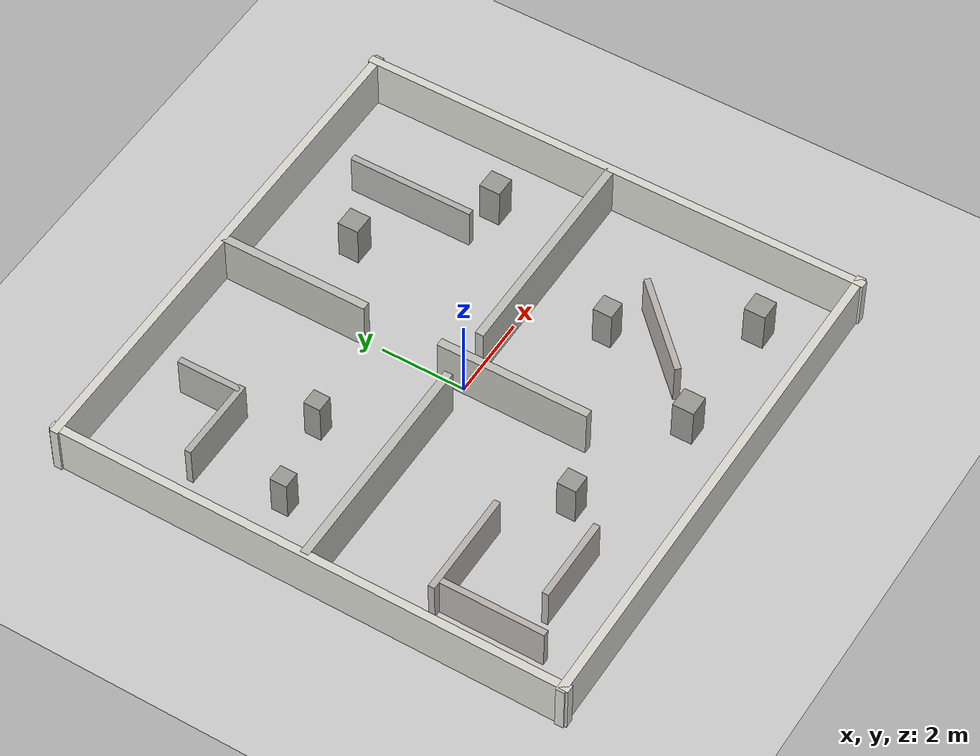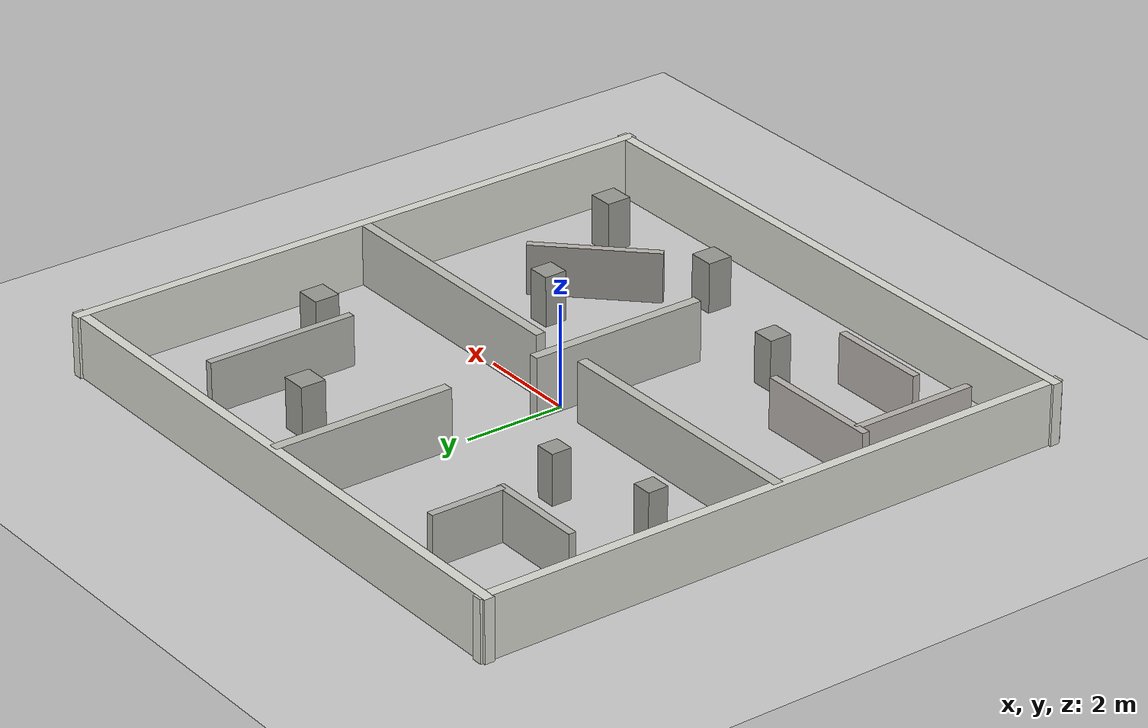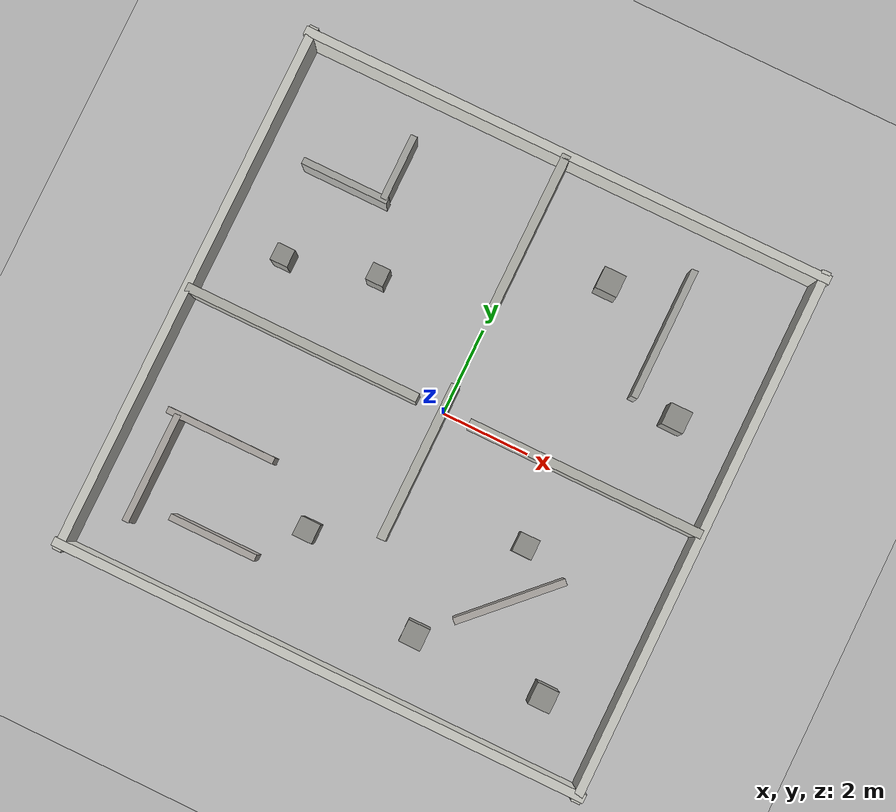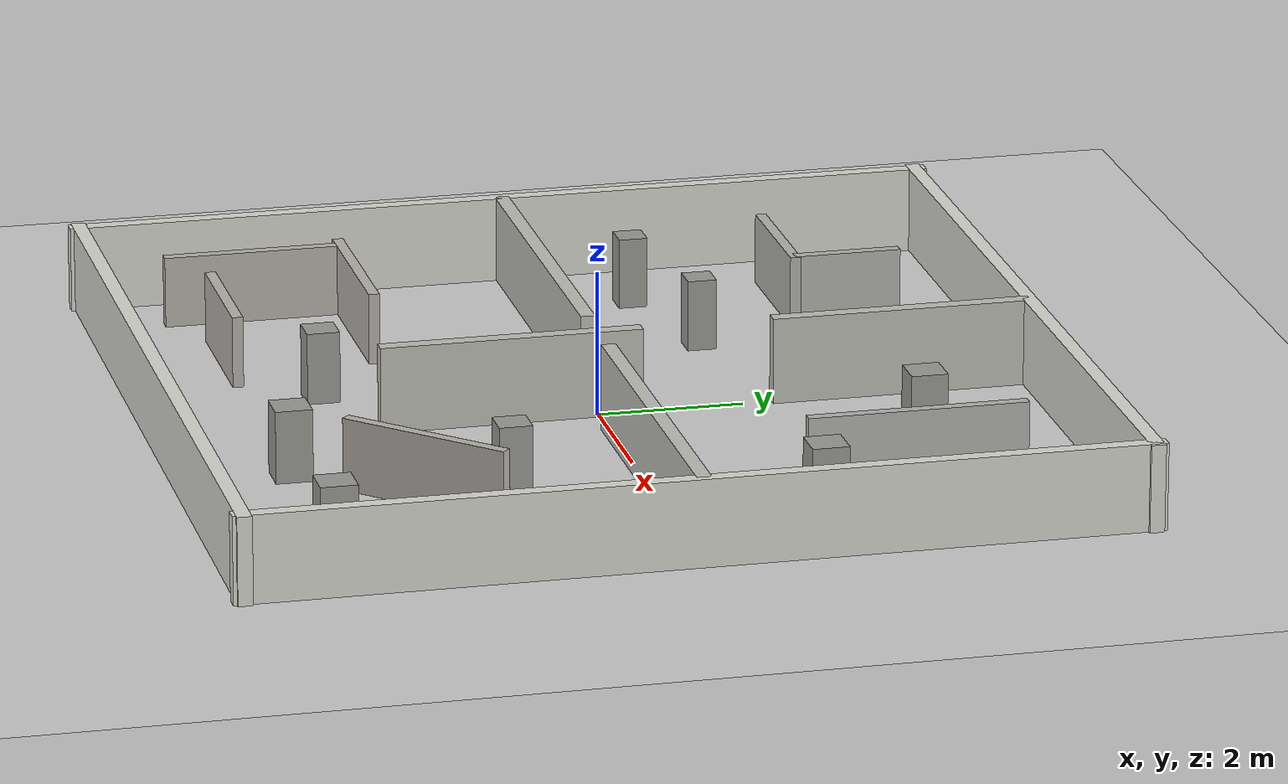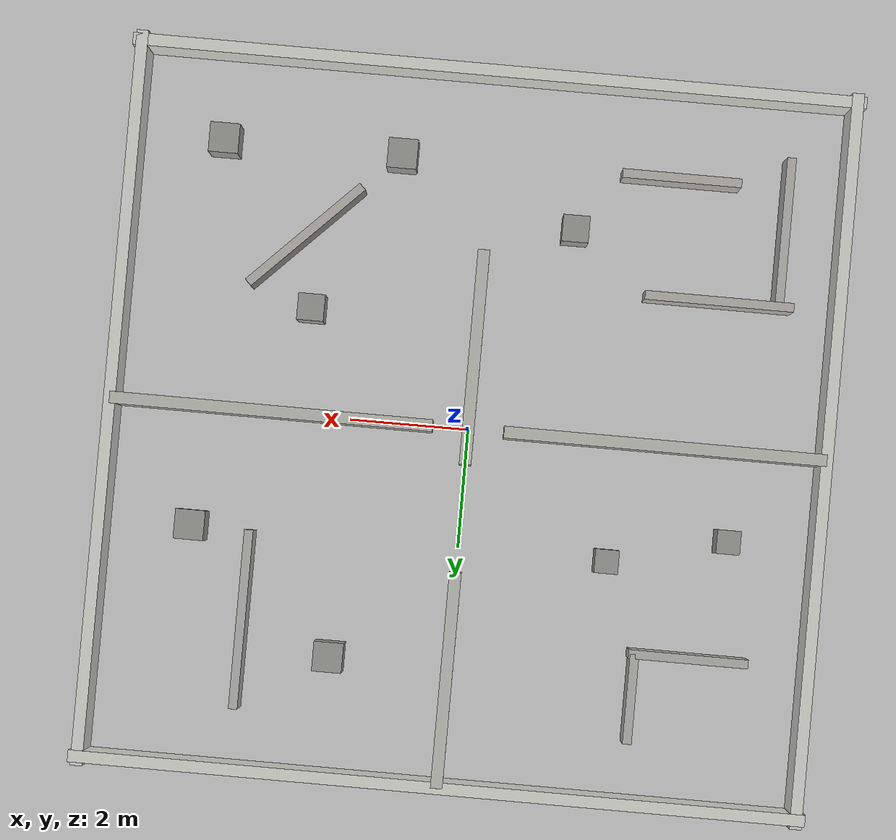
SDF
<?xml version="1.0" ?>
<sdf version="1.6">
  <world name="swarm_exploration_world">

    <include><uri>model://ground_plane</uri></include>
    <include><uri>model://sun</uri></include>

    <scene>
      <shadows>false</shadows>
      <ambient>0.6 0.6 0.6 1</ambient>
      <background>0.7 0.7 0.7 1</background>
    </scene>

    <physics type="ode">
      <real_time_update_rate>250.0</real_time_update_rate>
      <max_step_size>0.004</max_step_size>
      <real_time_factor>1</real_time_factor>
    </physics>

    <!-- OUTER BOUNDARY - 12m x 12m, centered at origin -->

    <model name="wall_north">
      <static>true</static><pose>0 6 0.6 0 0 0</pose>
      <link name="link">
        <collision name="c"><geometry><box><size>12.3 0.2 1.2</size></box></geometry></collision>
        <visual name="v"><geometry><box><size>12.3 0.2 1.2</size></box></geometry>
          <material><ambient>0.85 0.85 0.82 1</ambient><diffuse>0.85 0.85 0.82 1</diffuse></material></visual>
      </link>
    </model>

    <model name="wall_south">
      <static>true</static><pose>0 -6 0.6 0 0 0</pose>
      <link name="link">
        <collision name="c"><geometry><box><size>12.3 0.2 1.2</size></box></geometry></collision>
        <visual name="v"><geometry><box><size>12.3 0.2 1.2</size></box></geometry>
          <material><ambient>0.85 0.85 0.82 1</ambient><diffuse>0.85 0.85 0.82 1</diffuse></material></visual>
      </link>
    </model>

    <model name="wall_east">
      <static>true</static><pose>6 0 0.6 0 0 0</pose>
      <link name="link">
        <collision name="c"><geometry><box><size>0.2 12.3 1.2</size></box></geometry></collision>
        <visual name="v"><geometry><box><size>0.2 12.3 1.2</size></box></geometry>
          <material><ambient>0.85 0.85 0.82 1</ambient><diffuse>0.85 0.85 0.82 1</diffuse></material></visual>
      </link>
    </model>

    <model name="wall_west">
      <static>true</static><pose>-6 0 0.6 0 0 0</pose>
      <link name="link">
        <collision name="c"><geometry><box><size>0.2 12.3 1.2</size></box></geometry></collision>
        <visual name="v"><geometry><box><size>0.2 12.3 1.2</size></box></geometry>
          <material><ambient>0.85 0.85 0.82 1</ambient><diffuse>0.85 0.85 0.82 1</diffuse></material></visual>
      </link>
    </model>

    <!-- ROOM DIVIDERS - 4 rooms with 1.2m doorways -->

    <model name="divider_h_west">
      <static>true</static><pose>-3.3 0 0.6 0 0 0</pose>
      <link name="link">
        <collision name="c"><geometry><box><size>5.4 0.2 1.2</size></box></geometry></collision>
        <visual name="v"><geometry><box><size>5.4 0.2 1.2</size></box></geometry>
          <material><ambient>0.75 0.75 0.72 1</ambient><diffuse>0.75 0.75 0.72 1</diffuse></material></visual>
      </link>
    </model>

    <model name="divider_h_east">
      <static>true</static><pose>3.3 0 0.6 0 0 0</pose>
      <link name="link">
        <collision name="c"><geometry><box><size>5.4 0.2 1.2</size></box></geometry></collision>
        <visual name="v"><geometry><box><size>5.4 0.2 1.2</size></box></geometry>
          <material><ambient>0.75 0.75 0.72 1</ambient><diffuse>0.75 0.75 0.72 1</diffuse></material></visual>
      </link>
    </model>

    <model name="divider_v_mid">
      <static>true</static><pose>0 -1.2 0.6 0 0 0</pose>
      <link name="link">
        <collision name="c"><geometry><box><size>0.2 3.6 1.2</size></box></geometry></collision>
        <visual name="v"><geometry><box><size>0.2 3.6 1.2</size></box></geometry>
          <material><ambient>0.75 0.75 0.72 1</ambient><diffuse>0.75 0.75 0.72 1</diffuse></material></visual>
      </link>
    </model>

    <model name="divider_v_north">
      <static>true</static><pose>0 4.2 0.6 0 0 0</pose>
      <link name="link">
        <collision name="c"><geometry><box><size>0.2 3.6 1.2</size></box></geometry></collision>
        <visual name="v"><geometry><box><size>0.2 3.6 1.2</size></box></geometry>
          <material><ambient>0.75 0.75 0.72 1</ambient><diffuse>0.75 0.75 0.72 1</diffuse></material></visual>
      </link>
    </model>

    <!-- INTERIOR OBSTACLES -->

    <!-- NW room: L-shaped alcove wall -->
    <model name="alcove_nw_a">
      <static>true</static><pose>-4.0 3.5 0.5 0 0 0</pose>
      <link name="link">
        <collision name="c"><geometry><box><size>2.0 0.15 1.0</size></box></geometry></collision>
        <visual name="v"><geometry><box><size>2.0 0.15 1.0</size></box></geometry>
          <material><ambient>0.7 0.7 0.68 1</ambient><diffuse>0.7 0.7 0.68 1</diffuse></material></visual>
      </link>
    </model>

    <model name="alcove_nw_b">
      <static>true</static><pose>-3.1 4.25 0.5 0 0 0</pose>
      <link name="link">
        <collision name="c"><geometry><box><size>0.15 1.5 1.0</size></box></geometry></collision>
        <visual name="v"><geometry><box><size>0.15 1.5 1.0</size></box></geometry>
          <material><ambient>0.7 0.7 0.68 1</ambient><diffuse>0.7 0.7 0.68 1</diffuse></material></visual>
      </link>
    </model>

    <!-- NW room: pillar pair -->
    <model name="pillar_nw_1">
      <static>true</static><pose>-4.5 1.5 0.5 0 0 0</pose>
      <link name="link">
        <collision name="c"><geometry><box><size>0.4 0.4 1.0</size></box></geometry></collision>
        <visual name="v"><geometry><box><size>0.4 0.4 1.0</size></box></geometry>
          <material><ambient>0.6 0.6 0.58 1</ambient><diffuse>0.6 0.6 0.58 1</diffuse></material></visual>
      </link>
    </model>

    <model name="pillar_nw_2">
      <static>true</static><pose>-2.5 2.0 0.5 0 0 0</pose>
      <link name="link">
        <collision name="c"><geometry><box><size>0.4 0.4 1.0</size></box></geometry></collision>
        <visual name="v"><geometry><box><size>0.4 0.4 1.0</size></box></geometry>
          <material><ambient>0.6 0.6 0.58 1</ambient><diffuse>0.6 0.6 0.58 1</diffuse></material></visual>
      </link>
    </model>

    <!-- NE room: corridor stub -->
    <model name="corridor_ne">
      <static>true</static><pose>3.5 3.5 0.5 0 0 1.5708</pose>
      <link name="link">
        <collision name="c"><geometry><box><size>3.0 0.15 1.0</size></box></geometry></collision>
        <visual name="v"><geometry><box><size>3.0 0.15 1.0</size></box></geometry>
          <material><ambient>0.7 0.7 0.68 1</ambient><diffuse>0.7 0.7 0.68 1</diffuse></material></visual>
      </link>
    </model>

    <model name="pillar_ne_1">
      <static>true</static><pose>2.0 4.0 0.5 0 0 0</pose>
      <link name="link">
        <collision name="c"><geometry><box><size>0.5 0.5 1.0</size></box></geometry></collision>
        <visual name="v"><geometry><box><size>0.5 0.5 1.0</size></box></geometry>
          <material><ambient>0.6 0.6 0.58 1</ambient><diffuse>0.6 0.6 0.58 1</diffuse></material></visual>
      </link>
    </model>

    <model name="pillar_ne_2">
      <static>true</static><pose>4.5 2.0 0.5 0 0 0</pose>
      <link name="link">
        <collision name="c"><geometry><box><size>0.5 0.5 1.0</size></box></geometry></collision>
        <visual name="v"><geometry><box><size>0.5 0.5 1.0</size></box></geometry>
          <material><ambient>0.6 0.6 0.58 1</ambient><diffuse>0.6 0.6 0.58 1</diffuse></material></visual>
      </link>
    </model>

    <!-- SW room: maze stub -->
    <model name="maze_sw_a">
      <static>true</static><pose>-4.0 -2.5 0.5 0 0 0</pose>
      <link name="link">
        <collision name="c"><geometry><box><size>2.5 0.15 1.0</size></box></geometry></collision>
        <visual name="v"><geometry><box><size>2.5 0.15 1.0</size></box></geometry>
          <material><ambient>0.72 0.7 0.68 1</ambient><diffuse>0.72 0.7 0.68 1</diffuse></material></visual>
      </link>
    </model>

    <model name="maze_sw_b">
      <static>true</static><pose>-5.0 -3.75 0.5 0 0 0</pose>
      <link name="link">
        <collision name="c"><geometry><box><size>0.15 2.5 1.0</size></box></geometry></collision>
        <visual name="v"><geometry><box><size>0.15 2.5 1.0</size></box></geometry>
          <material><ambient>0.72 0.7 0.68 1</ambient><diffuse>0.72 0.7 0.68 1</diffuse></material></visual>
      </link>
    </model>

    <model name="maze_sw_c">
      <static>true</static><pose>-3.2 -4.5 0.5 0 0 0</pose>
      <link name="link">
        <collision name="c"><geometry><box><size>2.0 0.15 1.0</size></box></geometry></collision>
        <visual name="v"><geometry><box><size>2.0 0.15 1.0</size></box></geometry>
          <material><ambient>0.72 0.7 0.68 1</ambient><diffuse>0.72 0.7 0.68 1</diffuse></material></visual>
      </link>
    </model>

    <model name="pillar_sw_1">
      <static>true</static><pose>-1.5 -3.5 0.5 0 0 0</pose>
      <link name="link">
        <collision name="c"><geometry><box><size>0.45 0.45 1.0</size></box></geometry></collision>
        <visual name="v"><geometry><box><size>0.45 0.45 1.0</size></box></geometry>
          <material><ambient>0.6 0.6 0.58 1</ambient><diffuse>0.6 0.6 0.58 1</diffuse></material></visual>
      </link>
    </model>

    <!-- SE room: diagonal wall + pillars -->
    <model name="diag_se">
      <static>true</static><pose>3.0 -3.0 0.5 0 0 0.7854</pose>
      <link name="link">
        <collision name="c"><geometry><box><size>2.5 0.15 1.0</size></box></geometry></collision>
        <visual name="v"><geometry><box><size>2.5 0.15 1.0</size></box></geometry>
          <material><ambient>0.72 0.7 0.68 1</ambient><diffuse>0.72 0.7 0.68 1</diffuse></material></visual>
      </link>
    </model>

    <model name="pillar_se_1">
      <static>true</static><pose>4.5 -4.5 0.5 0 0 0</pose>
      <link name="link">
        <collision name="c"><geometry><box><size>0.5 0.5 1.0</size></box></geometry></collision>
        <visual name="v"><geometry><box><size>0.5 0.5 1.0</size></box></geometry>
          <material><ambient>0.6 0.6 0.58 1</ambient><diffuse>0.6 0.6 0.58 1</diffuse></material></visual>
      </link>
    </model>

    <model name="pillar_se_2">
      <static>true</static><pose>1.5 -4.5 0.5 0 0 0</pose>
      <link name="link">
        <collision name="c"><geometry><box><size>0.5 0.5 1.0</size></box></geometry></collision>
        <visual name="v"><geometry><box><size>0.5 0.5 1.0</size></box></geometry>
          <material><ambient>0.6 0.6 0.58 1</ambient><diffuse>0.6 0.6 0.58 1</diffuse></material></visual>
      </link>
    </model>

    <model name="pillar_se_3">
      <static>true</static><pose>2.8 -1.8 0.5 0 0 0</pose>
      <link name="link">
        <collision name="c"><geometry><box><size>0.45 0.45 1.0</size></box></geometry></collision>
        <visual name="v"><geometry><box><size>0.45 0.45 1.0</size></box></geometry>
          <material><ambient>0.6 0.6 0.58 1</ambient><diffuse>0.6 0.6 0.58 1</diffuse></material></visual>
      </link>
    </model>

  </world>
</sdf>
